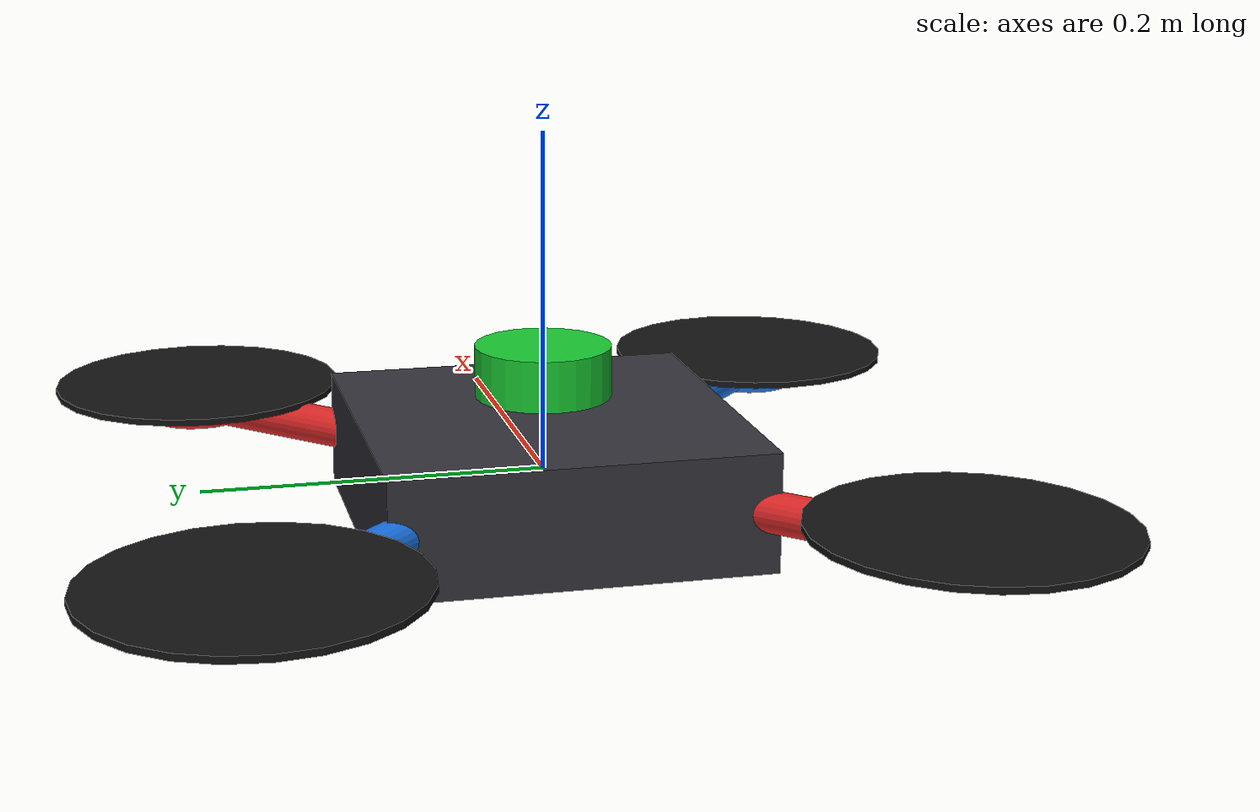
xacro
<?xml version="1.0"?>
<robot name="pilot_quadrotor" xmlns:xacro="http://wiki.ros.org/xacro">

  <!-- ==================== 参数区（便于统一调尺寸） ==================== -->
  <xacro:property name="body_size" value="0.22"/>  <!-- 方形机身边长（m） -->
  <xacro:property name="body_h" value="0.07"/>     <!-- 机身高度（m） -->
  <xacro:property name="arm_len" value="0.22"/>    <!-- 机臂长度（m） -->
  <xacro:property name="arm_r" value="0.012"/>     <!-- 机臂半径（m） -->
  <xacro:property name="motor_r" value="0.03"/>    <!-- 电机圆柱半径（m） -->
  <xacro:property name="motor_h" value="0.02"/>    <!-- 电机圆柱高度（m） -->
  <xacro:property name="prop_r" value="0.09"/>     <!-- 桨叶盘半径（m，仅可视化） -->
  <xacro:property name="prop_h" value="0.004"/>    <!-- 桨叶盘厚度（m） -->

  <!-- ==================== 材质区（只影响显示） ==================== -->
  <material name="body_gray"><color rgba="0.2 0.2 0.23 1"/></material>
  <material name="arm_blue"><color rgba="0.1 0.45 0.9 1"/></material>
  <material name="arm_red"><color rgba="0.85 0.15 0.15 1"/></material>
  <material name="prop_black"><color rgba="0.08 0.08 0.08 1"/></material>
  <material name="lidar_green"><color rgba="0.1 0.8 0.2 1"/></material>

  <!-- ==================== 机身主链接 base_link ==================== -->
  <link name="base_link">
    <!-- inertial: 质量和惯量，直接影响动力学 -->
    <inertial>
      <origin xyz="0 0 0" rpy="0 0 0"/>
      <mass value="1.4"/>
      <inertia ixx="0.02" ixy="0" ixz="0" iyy="0.02" iyz="0" izz="0.03"/>
    </inertial>

    <!-- visual: 在 RViz/Gazebo 中看到的外观 -->
    <visual>
      <geometry><box size="${body_size} ${body_size} ${body_h}"/></geometry>
      <material name="body_gray"/>
    </visual>

    <!-- collision: 碰撞体。可与 visual 不同，这里保持一致便于理解 -->
    <collision>
      <geometry><box size="${body_size} ${body_size} ${body_h}"/></geometry>
    </collision>
  </link>

  <!-- IMU 挂载点：很多飞控/滤波会需要 imu_link -->
  <link name="imu_link"/>
  <joint name="imu_joint" type="fixed">
    <parent link="base_link"/>
    <child link="imu_link"/>
    <origin xyz="0 0 0" rpy="0 0 0"/>
  </joint>

  <!--
    ==================== 机臂模块宏 ====================
    通过宏复用：每个机臂包含 arm + motor + prop 三部分。
    参数：
    - name: 名称前缀
    - ox/oy: 机臂根部在 base_link 下的位置
    - yaw: 机臂朝向角（绕 z）
    - color: 显示颜色
  -->
  <xacro:macro name="arm_module" params="name ox oy yaw color">
    <link name="${name}_arm">
      <visual>
        <!-- 圆柱默认沿 z，这里绕 y 转90度让它沿 x 方向伸出 -->
        <origin xyz="0 0 0" rpy="0 1.5708 0"/>
        <geometry><cylinder radius="${arm_r}" length="${arm_len}"/></geometry>
        <material name="${color}"/>
      </visual>
      <collision>
        <origin xyz="0 0 0" rpy="0 1.5708 0"/>
        <geometry><cylinder radius="${arm_r}" length="${arm_len}"/></geometry>
      </collision>
      <inertial>
        <mass value="0.08"/>
        <inertia ixx="0.0005" ixy="0" ixz="0" iyy="0.0005" iyz="0" izz="0.0001"/>
      </inertial>
    </link>
    <joint name="${name}_arm_joint" type="fixed">
      <parent link="base_link"/>
      <child link="${name}_arm"/>
      <origin xyz="${ox} ${oy} 0" rpy="0 0 ${yaw}"/>
    </joint>

    <!-- 电机（推力施加点） -->
    <link name="${name}_motor">
      <visual>
        <geometry><cylinder radius="${motor_r}" length="${motor_h}"/></geometry>
        <material name="${color}"/>
      </visual>
      <collision>
        <geometry><cylinder radius="${motor_r}" length="${motor_h}"/></geometry>
      </collision>
      <inertial>
        <mass value="0.05"/>
        <inertia ixx="0.00005" ixy="0" ixz="0" iyy="0.00005" iyz="0" izz="0.00008"/>
      </inertial>
    </link>
    <joint name="${name}_motor_joint" type="fixed">
      <parent link="${name}_arm"/>
      <child link="${name}_motor"/>
      <origin xyz="${arm_len/2.0} 0 0" rpy="0 0 0"/>
    </joint>

    <!-- 桨叶可视化（学习阶段先不做空气动力学细节） -->
    <link name="${name}_prop">
      <visual>
        <geometry><cylinder radius="${prop_r}" length="${prop_h}"/></geometry>
        <material name="prop_black"/>
      </visual>
    </link>
    <joint name="${name}_prop_joint" type="continuous">
      <parent link="${name}_motor"/>
      <child link="${name}_prop"/>
      <origin xyz="0 0 ${motor_h/2.0 + prop_h/2.0}" rpy="0 0 0"/>
      <axis xyz="0 0 1"/>
    </joint>
  </xacro:macro>

  <!-- 四个机臂：X 构型 -->
  <xacro:arm_module name="front_left"  ox="${ body_size/2.0}" oy="${ body_size/2.0}" yaw="0.7854"  color="arm_red"/>
  <xacro:arm_module name="front_right" ox="${ body_size/2.0}" oy="${-body_size/2.0}" yaw="-0.7854" color="arm_blue"/>
  <xacro:arm_module name="rear_left"   ox="${-body_size/2.0}" oy="${ body_size/2.0}" yaw="2.3562"  color="arm_blue"/>
  <xacro:arm_module name="rear_right"  ox="${-body_size/2.0}" oy="${-body_size/2.0}" yaw="-2.3562" color="arm_red"/>

  <!-- ==================== 顶部 360° 激光雷达 ==================== -->
  <link name="lidar_link">
    <visual>
      <geometry><cylinder radius="0.04" length="0.03"/></geometry>
      <material name="lidar_green"/>
    </visual>
    <collision>
      <geometry><cylinder radius="0.04" length="0.03"/></geometry>
    </collision>
    <inertial>
      <mass value="0.08"/>
      <inertia ixx="0.0001" ixy="0" ixz="0" iyy="0.0001" iyz="0" izz="0.0001"/>
    </inertial>
  </link>
  <joint name="lidar_joint" type="fixed">
    <parent link="base_link"/>
    <child link="lidar_link"/>
    <origin xyz="0 0 ${body_h/2.0 + 0.025}" rpy="0 0 0"/>
  </joint>

  <!--
    Gazebo 雷达传感器：
    - 720 samples 覆盖 360°
    - 发布话题 /scan
    - frame 为 lidar_link
  -->
  <gazebo reference="lidar_link">
    <sensor type="ray" name="top_360_lidar">
      <pose>0 0 0 0 0 0</pose>
      <always_on>true</always_on>
      <visualize>true</visualize>
      <update_rate>12</update_rate>
      <ray>
        <scan>
          <horizontal>
            <samples>720</samples>
            <resolution>1</resolution>
            <min_angle>-3.14159</min_angle>
            <max_angle>3.14159</max_angle>
          </horizontal>
        </scan>
        <range>
          <min>0.12</min>
          <max>25.0</max>
          <resolution>0.01</resolution>
        </range>
        <noise>
          <type>gaussian</type>
          <mean>0.0</mean>
          <stddev>0.01</stddev>
        </noise>
      </ray>
      <plugin name="gazebo_ros_laser" filename="libgazebo_ros_laser.so">
        <topicName>/scan</topicName>
        <frameName>lidar_link</frameName>
      </plugin>
    </sensor>
  </gazebo>

  <gazebo>
    <plugin name="pilot_quadrotor_controller" filename="libpilot_quadrotor_controller.so">
      <robot_namespace>pilot</robot_namespace>
      <cmd_vel_topic>cmd_vel</cmd_vel_topic>
      <cmd_att_topic>cmd_attitude</cmd_att_topic>

      <!-- 几何相关 -->
      <arm_length>${arm_len}</arm_length>
      <yaw_moment_coeff>0.02</yaw_moment_coeff>

      <!-- 电机饱和上限（单个电机最大推力，单位近似N） -->
      <max_motor_thrust>20.0</max_motor_thrust>

      <!-- 速度环 -->
      <kp_xy>2.2</kp_xy>
      <kp_vz>4.2</kp_vz>

      <!-- 姿态/偏航 -->
      <kp_roll>7.0</kp_roll>
      <kd_roll>1.6</kd_roll>
      <kp_pitch>7.0</kp_pitch>
      <kd_pitch>1.6</kd_pitch>
      <kp_yaw>4.0</kp_yaw>
      <kd_yaw>0.8</kd_yaw>
      <kp_yaw_rate>1.5</kp_yaw_rate>
    </plugin>
  </gazebo>

  <gazebo reference="base_link">
    <material>Gazebo/DarkGrey</material>
  </gazebo>
</robot>
